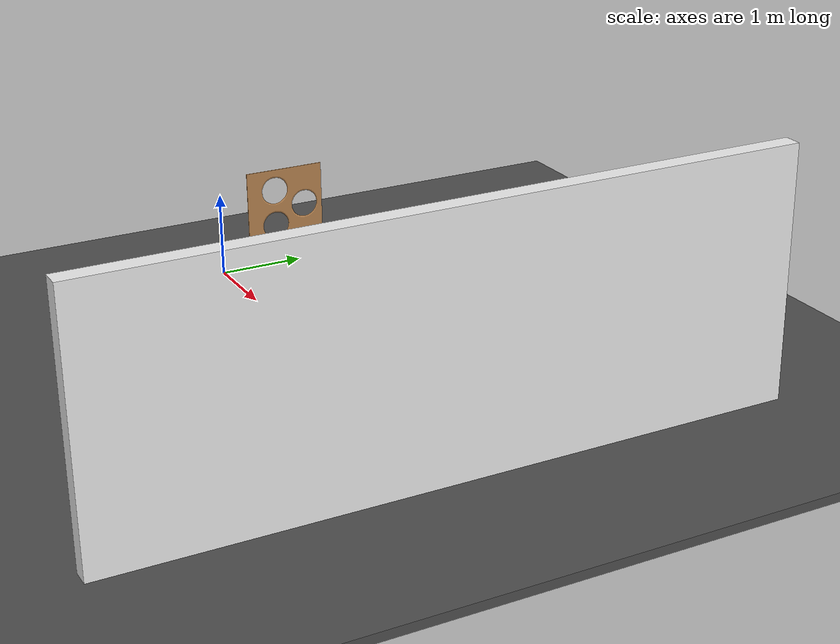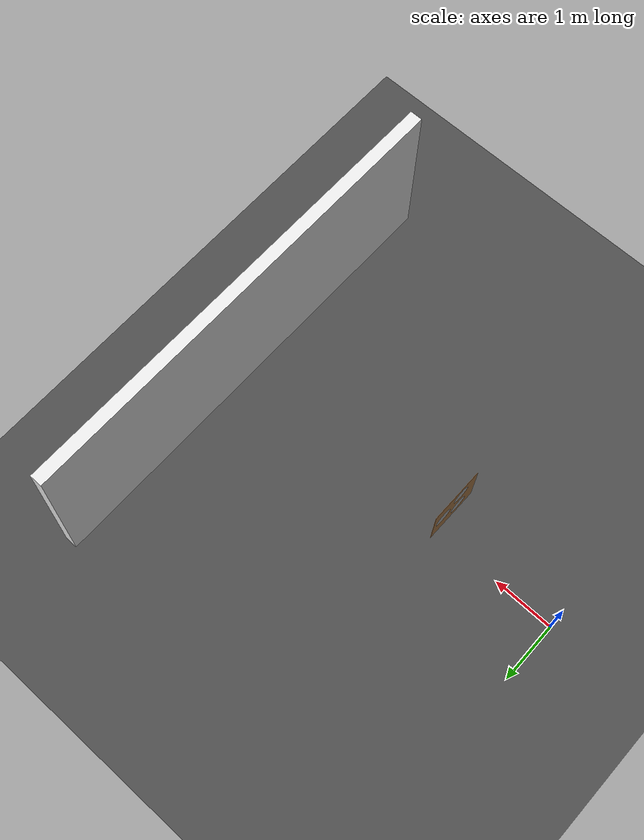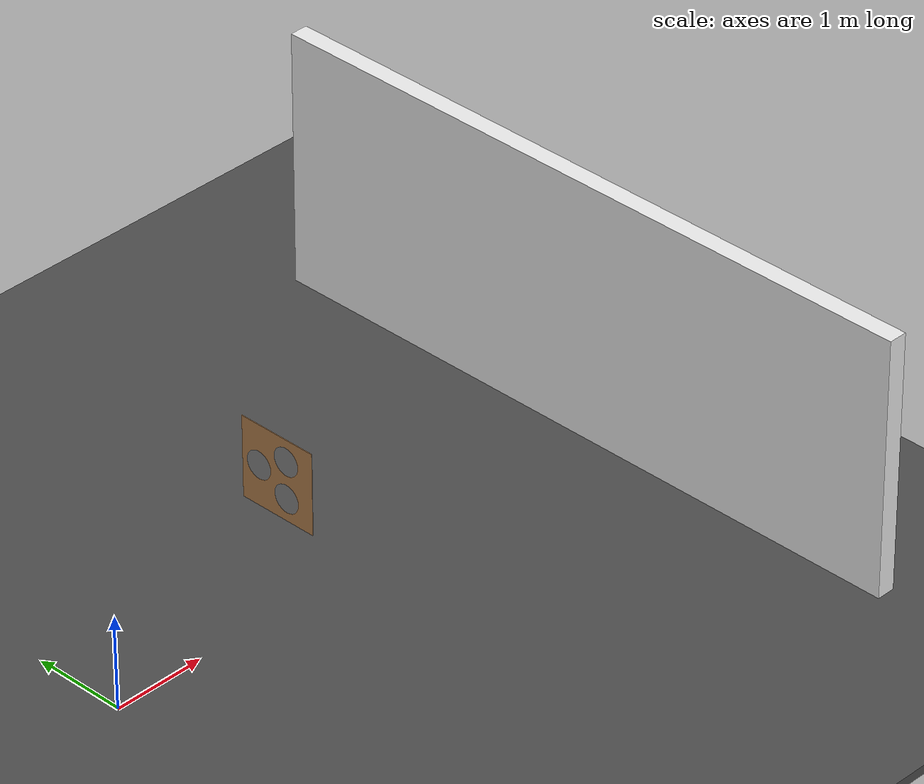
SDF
<sdf version="1.6">
 <world name="default">
  <light name="sun" type="directional">
   <pose>0 0 10 0 -0 0</pose>
   <diffuse>0.8 0.8 0.8 1</diffuse>
   <specular>0.2 0.2 0.2 1</specular>
   <attenuation>
    <range>1000</range>
    <constant>0.9</constant>
    <linear>0.01</linear>
    <quadratic>0.001</quadratic>
   </attenuation>
   <direction>-0.5 0.1 -0.9</direction>
   <spot><inner_angle>0</inner_angle><outer_angle>0</outer_angle><falloff>0</falloff></spot>
  </light>
  <model name="ground_plane">
   <static>1</static>
   <link name="link">
    <collision name="collision">
     <geometry><plane><normal>0 0 1</normal><size>100 100</size></plane></geometry>
     <surface><friction><ode><mu>100</mu><mu2>50</mu2></ode></friction></surface>
    </collision>
    <visual name="visual">
     <cast_shadows>0</cast_shadows>
     <geometry><plane><normal>0 0 1</normal><size>100 100</size></plane></geometry>
     <material>
      <script><uri>file://media/materials/scripts/gazebo.material</uri><name>Gazebo/Grey</name></script>
     </material>
    </visual>
   </link>
  </model>
  <gravity>0 0 -9.8</gravity>
  <magnetic_field>6e-06 2.3e-05 -4.2e-05</magnetic_field>
  <atmosphere type="adiabatic"/>
  <physics type="ode">
   <max_step_size>0.001</max_step_size>
   <real_time_factor>1</real_time_factor>
   <real_time_update_rate>1000</real_time_update_rate>
  </physics>
  <scene><ambient>0.4 0.4 0.4 1</ambient><background>0.7 0.7 0.7 1</background><shadows>1</shadows></scene>
  <spherical_coordinates>
   <surface_model>EARTH_WGS84</surface_model>
   <latitude_deg>0</latitude_deg>
   <longitude_deg>0</longitude_deg>
   <elevation>0</elevation>
   <heading_deg>0</heading_deg>
  </spherical_coordinates>
  <model name="white_wall">
   <static>1</static>
   <link name="link">
    <pose>0 0 1.4 0 -0 0</pose>
    <collision name="collision"><geometry><box><size>7.5 0.2 2.8</size></box></geometry></collision>
    <visual name="visual">
     <cast_shadows>0</cast_shadows>
     <geometry><box><size>7.5 0.2 2.8</size></box></geometry>
     <material>
      <script><uri>file://media/materials/scripts/gazebo.material</uri><name>Gazebo/White</name></script>
     </material>
    </visual>
   </link>
   <pose>6 0 0 0 -0 1.57</pose>
  </model>
  <model name="our_board">
   <static>1</static>
   <pose>2 0 1.5 1.5708 -0 1.5708</pose>
   <link name="link">
    <inertial>
     <pose>-0 -0.002959 -0 0 -0 0</pose>
     <mass>1.5889</mass>
     <inertia>
      <ixx>0.1243</ixx>
      <ixy>2.3621e-18</ixy>
      <ixz>2.4903e-18</ixz>
      <iyy>0.2486</iyy>
      <iyz>-7.6169e-18</iyz>
      <izz>0.1243</izz>
     </inertia>
    </inertial>
    <collision name="collision">
     <geometry><mesh><uri>model://our_board/meshes/our_board.STL</uri></mesh></geometry>
    </collision>
    <visual name="visual">
     <geometry><mesh><uri>model://our_board/meshes/our_board.STL</uri></mesh></geometry>
     <material>
      <script><uri>file://media/materials/scripts/gazebo.material</uri><name>Gazebo/Wood</name></script>
     </material>
    </visual>
   </link>
  </model>
  <model name="asphalt_plane">
   <static>1</static>
   <link name="link">
    <collision name="collision"><geometry><box><size>20 20 0.1</size></box></geometry></collision>
    <visual name="visual">
     <cast_shadows>0</cast_shadows>
     <geometry><box><size>20 20 0.1</size></box></geometry>
     <material>
      <script>
       <uri>model://asphalt_plane/materials/scripts</uri>
       <uri>model://asphalt_plane/materials/textures</uri>
       <name>vrc/asphalt</name>
      </script>
     </material>
    </visual>
   </link>
   <pose>0 0 -0.05 0 -0 0</pose>
  </model>
 </world>
</sdf>
